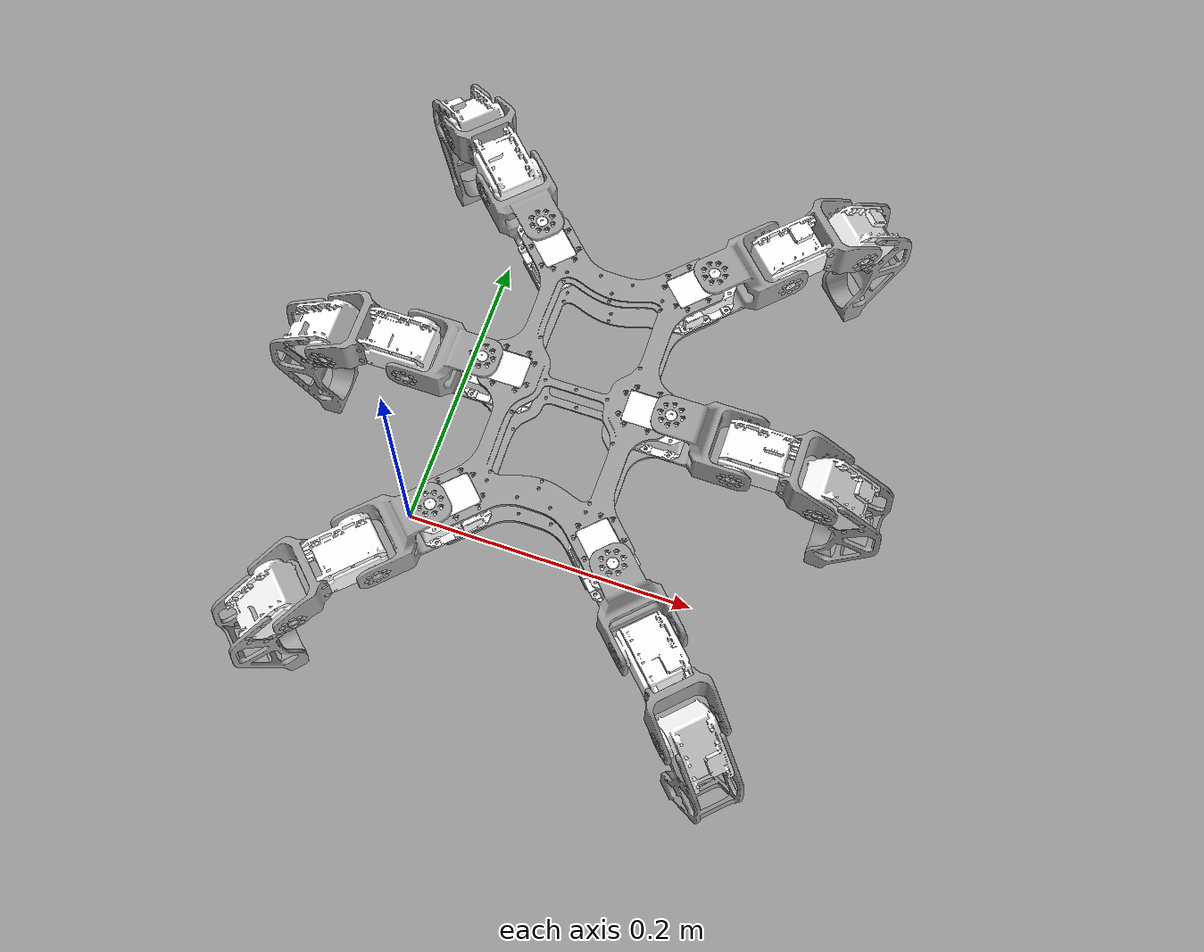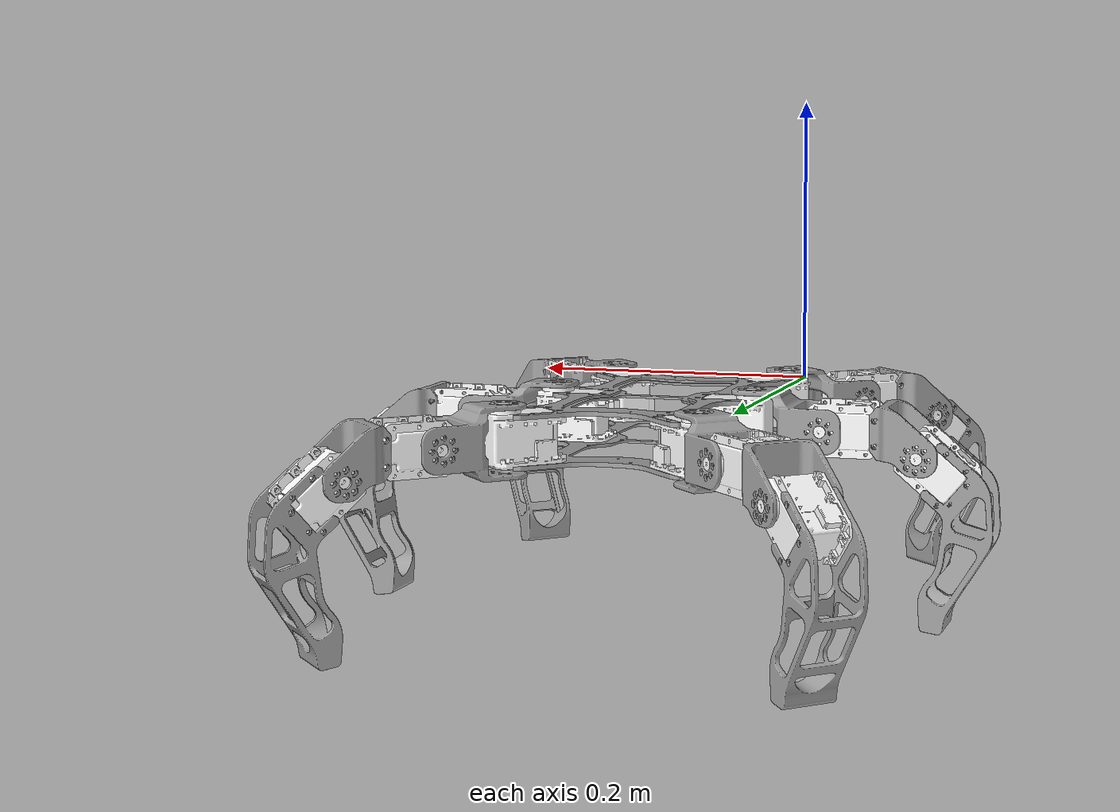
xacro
<?xml version="1.0"?>
<robot xmlns:xacro="http://www.ros.org/wiki/xacro" name="HexNav">

  <!-- Materials (shared across all assemblies) -->
  <material name="Steel">
    <color rgba="0.627 0.627 0.627 1.0"/>
  </material>
  <material name="custom_materials_MX_28">
    <color rgba="1.000 1.000 1.000 1.0"/>
  </material>

  <!-- Assembly includes -->
  <xacro:include filename="$(find HexNav_description)/urdf/assemblies/HexNav.urdf.xacro"/>

  <!-- Instantiate assemblies -->
  <xacro:HexNav prefix=""/>

</robot>

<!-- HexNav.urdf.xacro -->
<robot xmlns:xacro="http://www.ros.org/wiki/xacro" name="HexNav_macro">

  <xacro:macro name="HexNav" params="prefix">

  <link name="${prefix}base_link">
      <inertial>
        <origin xyz="0.076463 0.126463 -0.000093" rpy="0 0 0"/>
        <mass value="0.241313"/>
        <inertia ixx="1.257749e-03" ixy="-1.134942e-10" ixz="4.004551e-12"
                 iyy="3.921782e-04" iyz="6.945432e-12" izz="1.649569e-03"/>
      </inertial>
      <visual>
        <origin xyz="0.000000 0.000000 0.000000" rpy="0 0 0"/>
        <geometry>
          <mesh filename="package://HexNav_description/meshes/HexNav/base_link.dae" scale="1 1 1"/>
        </geometry>
        <material name="Steel"/>
      </visual>
      <collision>
        <origin xyz="0.000000 0.000000 0.000000" rpy="0 0 0"/>
        <geometry>
          <mesh filename="package://HexNav_description/meshes/HexNav/base_link_collision.stl" scale="0.01 0.01 0.01"/>
        </geometry>
      </collision>
    </link>

    <link name="${prefix}leg_1_mx28_coxa">
      <inertial>
        <origin xyz="-0.000000 -0.011211 0.000488" rpy="0 0 0"/>
        <mass value="0.073939"/>
        <inertia ixx="2.133718e-05" ixy="4.105011e-11" ixz="8.804791e-12"
                 iyy="1.325329e-05" iyz="-7.349997e-07" izz="1.755926e-05"/>
      </inertial>
      <visual>
        <origin xyz="0.000000 0.000000 0.000000" rpy="0 0 0"/>
        <geometry>
          <mesh filename="package://HexNav_description/meshes/HexNav/leg_1_mx28_coxa.dae" scale="1 1 1"/>
        </geometry>
        <material name="custom_materials_MX_28"/>
      </visual>
      <collision>
        <origin xyz="0.000000 0.000000 0.000000" rpy="0 0 0"/>
        <geometry>
          <mesh filename="package://HexNav_description/meshes/HexNav/leg_1_mx28_coxa_collision.stl" scale="0.01 0.01 0.01"/>
        </geometry>
      </collision>
    </link>

    <link name="${prefix}leg_2_mx28_coxa">
      <inertial>
        <origin xyz="-0.000000 -0.011211 0.000488" rpy="0 0 0"/>
        <mass value="0.073939"/>
        <inertia ixx="2.133718e-05" ixy="4.105011e-11" ixz="8.804791e-12"
                 iyy="1.325329e-05" iyz="-7.349997e-07" izz="1.755926e-05"/>
      </inertial>
      <visual>
        <origin xyz="0.000000 0.000000 0.000000" rpy="0 0 0"/>
        <geometry>
          <mesh filename="package://HexNav_description/meshes/HexNav/leg_2_mx28_coxa.dae" scale="1 1 1"/>
        </geometry>
        <material name="custom_materials_MX_28"/>
      </visual>
      <collision>
        <origin xyz="0.000000 0.000000 0.000000" rpy="0 0 0"/>
        <geometry>
          <mesh filename="package://HexNav_description/meshes/HexNav/leg_2_mx28_coxa_collision.stl" scale="0.01 0.01 0.01"/>
        </geometry>
      </collision>
    </link>

    <link name="${prefix}leg_3_mx28_coxa">
      <inertial>
        <origin xyz="-0.000000 -0.011211 0.000488" rpy="0 0 0"/>
        <mass value="0.073939"/>
        <inertia ixx="2.133718e-05" ixy="4.105011e-11" ixz="8.804791e-12"
                 iyy="1.325329e-05" iyz="-7.349997e-07" izz="1.755926e-05"/>
      </inertial>
      <visual>
        <origin xyz="0.000000 0.000000 0.000000" rpy="0 0 0"/>
        <geometry>
          <mesh filename="package://HexNav_description/meshes/HexNav/leg_3_mx28_coxa.dae" scale="1 1 1"/>
        </geometry>
        <material name="custom_materials_MX_28"/>
      </visual>
      <collision>
        <origin xyz="0.000000 0.000000 0.000000" rpy="0 0 0"/>
        <geometry>
          <mesh filename="package://HexNav_description/meshes/HexNav/leg_3_mx28_coxa_collision.stl" scale="0.01 0.01 0.01"/>
        </geometry>
      </collision>
    </link>

    <link name="${prefix}leg_4_mx28_coxa">
      <inertial>
        <origin xyz="-0.000000 -0.011211 0.000488" rpy="0 0 0"/>
        <mass value="0.073939"/>
        <inertia ixx="2.133718e-05" ixy="4.105011e-11" ixz="8.804791e-12"
                 iyy="1.325329e-05" iyz="-7.349997e-07" izz="1.755926e-05"/>
      </inertial>
      <visual>
        <origin xyz="0.000000 0.000000 0.000000" rpy="0 0 0"/>
        <geometry>
          <mesh filename="package://HexNav_description/meshes/HexNav/leg_4_mx28_coxa.dae" scale="1 1 1"/>
        </geometry>
        <material name="custom_materials_MX_28"/>
      </visual>
      <collision>
        <origin xyz="0.000000 0.000000 0.000000" rpy="0 0 0"/>
        <geometry>
          <mesh filename="package://HexNav_description/meshes/HexNav/leg_4_mx28_coxa_collision.stl" scale="0.01 0.01 0.01"/>
        </geometry>
      </collision>
    </link>

    <link name="${prefix}leg_5_mx28_coxa">
      <inertial>
        <origin xyz="-0.000000 -0.011211 0.000488" rpy="0 0 0"/>
        <mass value="0.073939"/>
        <inertia ixx="2.133718e-05" ixy="4.105011e-11" ixz="8.804791e-12"
                 iyy="1.325329e-05" iyz="-7.349997e-07" izz="1.755926e-05"/>
      </inertial>
      <visual>
        <origin xyz="0.000000 0.000000 0.000000" rpy="0 0 0"/>
        <geometry>
          <mesh filename="package://HexNav_description/meshes/HexNav/leg_5_mx28_coxa.dae" scale="1 1 1"/>
        </geometry>
        <material name="custom_materials_MX_28"/>
      </visual>
      <collision>
        <origin xyz="0.000000 0.000000 0.000000" rpy="0 0 0"/>
        <geometry>
          <mesh filename="package://HexNav_description/meshes/HexNav/leg_5_mx28_coxa_collision.stl" scale="0.01 0.01 0.01"/>
        </geometry>
      </collision>
    </link>

    <link name="${prefix}leg_6_mx28_coxa">
      <inertial>
        <origin xyz="-0.000000 -0.011211 0.000488" rpy="0 0 0"/>
        <mass value="0.073939"/>
        <inertia ixx="2.133718e-05" ixy="4.105011e-11" ixz="8.804791e-12"
                 iyy="1.325329e-05" iyz="-7.349997e-07" izz="1.755926e-05"/>
      </inertial>
      <visual>
        <origin xyz="0.000000 0.000000 0.000000" rpy="0 0 0"/>
        <geometry>
          <mesh filename="package://HexNav_description/meshes/HexNav/leg_6_mx28_coxa.dae" scale="1 1 1"/>
        </geometry>
        <material name="custom_materials_MX_28"/>
      </visual>
      <collision>
        <origin xyz="0.000000 0.000000 0.000000" rpy="0 0 0"/>
        <geometry>
          <mesh filename="package://HexNav_description/meshes/HexNav/leg_6_mx28_coxa_collision.stl" scale="0.01 0.01 0.01"/>
        </geometry>
      </collision>
    </link>

    <link name="${prefix}leg_1_coxa">
      <inertial>
        <origin xyz="0.025992 0.000000 -0.021000" rpy="0 0 0"/>
        <mass value="0.192963"/>
        <inertia ixx="8.738242e-05" ixy="2.125340e-10" ixz="2.256209e-11"
                 iyy="8.740078e-05" iyz="-1.147543e-12" izz="8.977308e-05"/>
      </inertial>
      <visual>
        <origin xyz="0.052000 -0.000000 -0.021000" rpy="0 0 0"/>
        <geometry>
          <mesh filename="package://HexNav_description/meshes/HexNav/leg_1_coxa.dae" scale="1 1 1"/>
        </geometry>
        <material name="Steel"/>
      </visual>
      <collision>
        <origin xyz="0.052000 -0.000000 -0.021000" rpy="0 0 0"/>
        <geometry>
          <mesh filename="package://HexNav_description/meshes/HexNav/leg_1_coxa_collision.stl" scale="0.01 0.01 0.01"/>
        </geometry>
      </collision>
    </link>

    <link name="${prefix}leg_2_coxa">
      <inertial>
        <origin xyz="0.025992 0.000000 -0.021000" rpy="0 0 0"/>
        <mass value="0.192963"/>
        <inertia ixx="8.738242e-05" ixy="2.125340e-10" ixz="2.256209e-11"
                 iyy="8.740078e-05" iyz="-1.147543e-12" izz="8.977308e-05"/>
      </inertial>
      <visual>
        <origin xyz="0.052000 -0.000000 -0.021000" rpy="0 0 0"/>
        <geometry>
          <mesh filename="package://HexNav_description/meshes/HexNav/leg_2_coxa.dae" scale="1 1 1"/>
        </geometry>
        <material name="Steel"/>
      </visual>
      <collision>
        <origin xyz="0.052000 -0.000000 -0.021000" rpy="0 0 0"/>
        <geometry>
          <mesh filename="package://HexNav_description/meshes/HexNav/leg_2_coxa_collision.stl" scale="0.01 0.01 0.01"/>
        </geometry>
      </collision>
    </link>

    <link name="${prefix}leg_3_coxa">
      <inertial>
        <origin xyz="0.025992 0.000000 -0.021000" rpy="0 0 0"/>
        <mass value="0.192963"/>
        <inertia ixx="8.738242e-05" ixy="2.125340e-10" ixz="2.256209e-11"
                 iyy="8.740078e-05" iyz="-1.147543e-12" izz="8.977308e-05"/>
      </inertial>
      <visual>
        <origin xyz="0.052000 -0.000000 -0.021000" rpy="0 0 0"/>
        <geometry>
          <mesh filename="package://HexNav_description/meshes/HexNav/leg_3_coxa.dae" scale="1 1 1"/>
        </geometry>
        <material name="Steel"/>
      </visual>
      <collision>
        <origin xyz="0.052000 -0.000000 -0.021000" rpy="0 0 0"/>
        <geometry>
          <mesh filename="package://HexNav_description/meshes/HexNav/leg_3_coxa_collision.stl" scale="0.01 0.01 0.01"/>
        </geometry>
      </collision>
    </link>

    <link name="${prefix}leg_4_coxa">
      <inertial>
        <origin xyz="0.025992 0.000000 -0.021000" rpy="0 0 0"/>
        <mass value="0.192963"/>
        <inertia ixx="8.738242e-05" ixy="2.125340e-10" ixz="2.256209e-11"
                 iyy="8.740078e-05" iyz="-1.147543e-12" izz="8.977308e-05"/>
      </inertial>
      <visual>
        <origin xyz="0.052000 -0.000000 -0.021000" rpy="0 0 0"/>
        <geometry>
          <mesh filename="package://HexNav_description/meshes/HexNav/leg_4_coxa.dae" scale="1 1 1"/>
        </geometry>
        <material name="Steel"/>
      </visual>
      <collision>
        <origin xyz="0.052000 -0.000000 -0.021000" rpy="0 0 0"/>
        <geometry>
          <mesh filename="package://HexNav_description/meshes/HexNav/leg_4_coxa_collision.stl" scale="0.01 0.01 0.01"/>
        </geometry>
      </collision>
    </link>

    <link name="${prefix}leg_5_coxa">
      <inertial>
        <origin xyz="0.025992 0.000000 -0.021000" rpy="0 0 0"/>
        <mass value="0.192963"/>
        <inertia ixx="8.738242e-05" ixy="2.125340e-10" ixz="2.256209e-11"
                 iyy="8.740078e-05" iyz="-1.147543e-12" izz="8.977308e-05"/>
      </inertial>
      <visual>
        <origin xyz="0.052000 -0.000000 -0.021000" rpy="0 0 0"/>
        <geometry>
          <mesh filename="package://HexNav_description/meshes/HexNav/leg_5_coxa.dae" scale="1 1 1"/>
        </geometry>
        <material name="Steel"/>
      </visual>
      <collision>
        <origin xyz="0.052000 -0.000000 -0.021000" rpy="0 0 0"/>
        <geometry>
          <mesh filename="package://HexNav_description/meshes/HexNav/leg_5_coxa_collision.stl" scale="0.01 0.01 0.01"/>
        </geometry>
      </collision>
    </link>

    <link name="${prefix}bot">
      <inertial>
        <origin xyz="0.076463 0.126463 0.001407" rpy="0 0 0"/>
        <mass value="0.241313"/>
        <inertia ixx="1.257749e-03" ixy="-1.134942e-10" ixz="4.004551e-12"
                 iyy="3.921782e-04" iyz="6.945432e-12" izz="1.649569e-03"/>
      </inertial>
      <visual>
        <origin xyz="0.000000 0.000000 0.000000" rpy="0 0 0"/>
        <geometry>
          <mesh filename="package://HexNav_description/meshes/HexNav/bot.dae" scale="1 1 1"/>
        </geometry>
        <material name="Steel"/>
      </visual>
      <collision>
        <origin xyz="0.000000 0.000000 0.000000" rpy="0 0 0"/>
        <geometry>
          <mesh filename="package://HexNav_description/meshes/HexNav/bot_collision.stl" scale="0.01 0.01 0.01"/>
        </geometry>
      </collision>
    </link>

    <link name="${prefix}leg_6_coxa">
      <inertial>
        <origin xyz="0.025992 0.000000 -0.021000" rpy="0 0 0"/>
        <mass value="0.192963"/>
        <inertia ixx="8.738242e-05" ixy="2.125340e-10" ixz="2.256209e-11"
                 iyy="8.740078e-05" iyz="-1.147543e-12" izz="8.977308e-05"/>
      </inertial>
      <visual>
        <origin xyz="0.052000 -0.000000 -0.021000" rpy="0 0 0"/>
        <geometry>
          <mesh filename="package://HexNav_description/meshes/HexNav/leg_6_coxa.dae" scale="1 1 1"/>
        </geometry>
        <material name="Steel"/>
      </visual>
      <collision>
        <origin xyz="0.052000 -0.000000 -0.021000" rpy="0 0 0"/>
        <geometry>
          <mesh filename="package://HexNav_description/meshes/HexNav/leg_6_coxa_collision.stl" scale="0.01 0.01 0.01"/>
        </geometry>
      </collision>
    </link>

    <link name="${prefix}leg_1_mx28_femur">
      <inertial>
        <origin xyz="-0.000000 -0.011211 -0.020512" rpy="0 0 0"/>
        <mass value="0.073939"/>
        <inertia ixx="2.133718e-05" ixy="4.105011e-11" ixz="8.804791e-12"
                 iyy="1.325329e-05" iyz="-7.349997e-07" izz="1.755926e-05"/>
      </inertial>
      <visual>
        <origin xyz="0.000000 -0.000000 -0.021000" rpy="0 0 0"/>
        <geometry>
          <mesh filename="package://HexNav_description/meshes/HexNav/leg_1_mx28_femur.dae" scale="1 1 1"/>
        </geometry>
        <material name="custom_materials_MX_28"/>
      </visual>
      <collision>
        <origin xyz="0.000000 -0.000000 -0.021000" rpy="0 0 0"/>
        <geometry>
          <mesh filename="package://HexNav_description/meshes/HexNav/leg_1_mx28_femur_collision.stl" scale="0.01 0.01 0.01"/>
        </geometry>
      </collision>
    </link>

    <link name="${prefix}leg_2_mx28_femur">
      <inertial>
        <origin xyz="-0.000000 -0.011211 -0.020512" rpy="0 0 0"/>
        <mass value="0.073939"/>
        <inertia ixx="2.133718e-05" ixy="4.105011e-11" ixz="8.804791e-12"
                 iyy="1.325329e-05" iyz="-7.349997e-07" izz="1.755926e-05"/>
      </inertial>
      <visual>
        <origin xyz="0.000000 0.000000 -0.021000" rpy="0 0 0"/>
        <geometry>
          <mesh filename="package://HexNav_description/meshes/HexNav/leg_2_mx28_femur.dae" scale="1 1 1"/>
        </geometry>
        <material name="custom_materials_MX_28"/>
      </visual>
      <collision>
        <origin xyz="0.000000 0.000000 -0.021000" rpy="0 0 0"/>
        <geometry>
          <mesh filename="package://HexNav_description/meshes/HexNav/leg_2_mx28_femur_collision.stl" scale="0.01 0.01 0.01"/>
        </geometry>
      </collision>
    </link>

    <link name="${prefix}leg_3_mx28_femur">
      <inertial>
        <origin xyz="-0.000000 -0.011211 -0.020512" rpy="0 0 0"/>
        <mass value="0.073939"/>
        <inertia ixx="2.133718e-05" ixy="4.105011e-11" ixz="8.804791e-12"
                 iyy="1.325329e-05" iyz="-7.349997e-07" izz="1.755926e-05"/>
      </inertial>
      <visual>
        <origin xyz="0.000000 0.000000 -0.021000" rpy="0 0 0"/>
        <geometry>
          <mesh filename="package://HexNav_description/meshes/HexNav/leg_3_mx28_femur.dae" scale="1 1 1"/>
        </geometry>
        <material name="custom_materials_MX_28"/>
      </visual>
      <collision>
        <origin xyz="0.000000 0.000000 -0.021000" rpy="0 0 0"/>
        <geometry>
          <mesh filename="package://HexNav_description/meshes/HexNav/leg_3_mx28_femur_collision.stl" scale="0.01 0.01 0.01"/>
        </geometry>
      </collision>
    </link>

    <link name="${prefix}leg_4_mx28_femur">
      <inertial>
        <origin xyz="-0.000000 -0.011211 -0.020512" rpy="0 0 0"/>
        <mass value="0.073939"/>
        <inertia ixx="2.133718e-05" ixy="4.105011e-11" ixz="8.804791e-12"
                 iyy="1.325329e-05" iyz="-7.349997e-07" izz="1.755926e-05"/>
      </inertial>
      <visual>
        <origin xyz="0.000000 0.000000 -0.021000" rpy="0 0 0"/>
        <geometry>
          <mesh filename="package://HexNav_description/meshes/HexNav/leg_4_mx28_femur.dae" scale="1 1 1"/>
        </geometry>
        <material name="custom_materials_MX_28"/>
      </visual>
      <collision>
        <origin xyz="0.000000 0.000000 -0.021000" rpy="0 0 0"/>
        <geometry>
          <mesh filename="package://HexNav_description/meshes/HexNav/leg_4_mx28_femur_collision.stl" scale="0.01 0.01 0.01"/>
        </geometry>
      </collision>
    </link>

    <link name="${prefix}leg_5_mx28_femur">
      <inertial>
        <origin xyz="-0.000000 -0.011211 -0.020512" rpy="0 0 0"/>
        <mass value="0.073939"/>
        <inertia ixx="2.133718e-05" ixy="4.105011e-11" ixz="8.804791e-12"
                 iyy="1.325329e-05" iyz="-7.349997e-07" izz="1.755926e-05"/>
      </inertial>
      <visual>
        <origin xyz="0.000000 0.000000 -0.021000" rpy="0 0 0"/>
        <geometry>
          <mesh filename="package://HexNav_description/meshes/HexNav/leg_5_mx28_femur.dae" scale="1 1 1"/>
        </geometry>
        <material name="custom_materials_MX_28"/>
      </visual>
      <collision>
        <origin xyz="0.000000 0.000000 -0.021000" rpy="0 0 0"/>
        <geometry>
          <mesh filename="package://HexNav_description/meshes/HexNav/leg_5_mx28_femur_collision.stl" scale="0.01 0.01 0.01"/>
        </geometry>
      </collision>
    </link>

    <link name="${prefix}leg_6_mx28_femur">
      <inertial>
        <origin xyz="-0.000000 -0.011211 -0.020512" rpy="0 0 0"/>
        <mass value="0.073939"/>
        <inertia ixx="2.133718e-05" ixy="4.105011e-11" ixz="8.804791e-12"
                 iyy="1.325329e-05" iyz="-7.349997e-07" izz="1.755926e-05"/>
      </inertial>
      <visual>
        <origin xyz="0.000000 0.000000 -0.021000" rpy="0 0 0"/>
        <geometry>
          <mesh filename="package://HexNav_description/meshes/HexNav/leg_6_mx28_femur.dae" scale="1 1 1"/>
        </geometry>
        <material name="custom_materials_MX_28"/>
      </visual>
      <collision>
        <origin xyz="0.000000 0.000000 -0.021000" rpy="0 0 0"/>
        <geometry>
          <mesh filename="package://HexNav_description/meshes/HexNav/leg_6_mx28_femur_collision.stl" scale="0.01 0.01 0.01"/>
        </geometry>
      </collision>
    </link>

    <link name="${prefix}leg_1_femur">
      <inertial>
        <origin xyz="0.002213 0.011329 -0.000000" rpy="0 0 0"/>
        <mass value="0.127034"/>
        <inertia ixx="4.921432e-05" ixy="-5.067981e-06" ixz="4.932326e-14"
                 iyy="5.134553e-05" iyz="-1.886637e-12" izz="2.756122e-05"/>
      </inertial>
      <visual>
        <origin xyz="0.000000 0.000000 0.000000" rpy="0 0 0"/>
        <geometry>
          <mesh filename="package://HexNav_description/meshes/HexNav/leg_1_femur.dae" scale="1 1 1"/>
        </geometry>
        <material name="Steel"/>
      </visual>
      <collision>
        <origin xyz="0.000000 0.000000 0.000000" rpy="0 0 0"/>
        <geometry>
          <mesh filename="package://HexNav_description/meshes/HexNav/leg_1_femur_collision.stl" scale="0.01 0.01 0.01"/>
        </geometry>
      </collision>
    </link>

    <link name="${prefix}leg_2_femur">
      <inertial>
        <origin xyz="0.002213 0.011329 -0.000000" rpy="0 0 0"/>
        <mass value="0.127034"/>
        <inertia ixx="4.921432e-05" ixy="-5.067981e-06" ixz="4.932326e-14"
                 iyy="5.134553e-05" iyz="-1.886637e-12" izz="2.756122e-05"/>
      </inertial>
      <visual>
        <origin xyz="0.000000 0.000000 0.000000" rpy="0 0 0"/>
        <geometry>
          <mesh filename="package://HexNav_description/meshes/HexNav/leg_2_femur.dae" scale="1 1 1"/>
        </geometry>
        <material name="Steel"/>
      </visual>
      <collision>
        <origin xyz="0.000000 0.000000 0.000000" rpy="0 0 0"/>
        <geometry>
          <mesh filename="package://HexNav_description/meshes/HexNav/leg_2_femur_collision.stl" scale="0.01 0.01 0.01"/>
        </geometry>
      </collision>
    </link>

    <link name="${prefix}leg_3_femur">
      <inertial>
        <origin xyz="0.002213 0.011329 -0.000000" rpy="0 0 0"/>
        <mass value="0.127034"/>
        <inertia ixx="4.921432e-05" ixy="-5.067981e-06" ixz="4.932326e-14"
                 iyy="5.134553e-05" iyz="-1.886637e-12" izz="2.756122e-05"/>
      </inertial>
      <visual>
        <origin xyz="0.000000 0.000000 0.000000" rpy="0 0 0"/>
        <geometry>
          <mesh filename="package://HexNav_description/meshes/HexNav/leg_3_femur.dae" scale="1 1 1"/>
        </geometry>
        <material name="Steel"/>
      </visual>
      <collision>
        <origin xyz="0.000000 0.000000 0.000000" rpy="0 0 0"/>
        <geometry>
          <mesh filename="package://HexNav_description/meshes/HexNav/leg_3_femur_collision.stl" scale="0.01 0.01 0.01"/>
        </geometry>
      </collision>
    </link>

    <link name="${prefix}leg_4_femur">
      <inertial>
        <origin xyz="0.002213 0.011329 -0.000000" rpy="0 0 0"/>
        <mass value="0.127034"/>
        <inertia ixx="4.921432e-05" ixy="-5.067981e-06" ixz="4.932326e-14"
                 iyy="5.134553e-05" iyz="-1.886637e-12" izz="2.756122e-05"/>
      </inertial>
      <visual>
        <origin xyz="0.000000 0.000000 0.000000" rpy="0 0 0"/>
        <geometry>
          <mesh filename="package://HexNav_description/meshes/HexNav/leg_4_femur.dae" scale="1 1 1"/>
        </geometry>
        <material name="Steel"/>
      </visual>
      <collision>
        <origin xyz="0.000000 0.000000 0.000000" rpy="0 0 0"/>
        <geometry>
          <mesh filename="package://HexNav_description/meshes/HexNav/leg_4_femur_collision.stl" scale="0.01 0.01 0.01"/>
        </geometry>
      </collision>
    </link>

    <link name="${prefix}leg_5_femur">
      <inertial>
        <origin xyz="0.002213 0.011329 -0.000000" rpy="0 0 0"/>
        <mass value="0.127034"/>
        <inertia ixx="4.921432e-05" ixy="-5.067981e-06" ixz="4.932326e-14"
                 iyy="5.134553e-05" iyz="-1.886637e-12" izz="2.756122e-05"/>
      </inertial>
      <visual>
        <origin xyz="0.000000 0.000000 0.000000" rpy="0 0 0"/>
        <geometry>
          <mesh filename="package://HexNav_description/meshes/HexNav/leg_5_femur.dae" scale="1 1 1"/>
        </geometry>
        <material name="Steel"/>
      </visual>
      <collision>
        <origin xyz="0.000000 0.000000 0.000000" rpy="0 0 0"/>
        <geometry>
          <mesh filename="package://HexNav_description/meshes/HexNav/leg_5_femur_collision.stl" scale="0.01 0.01 0.01"/>
        </geometry>
      </collision>
    </link>

    <link name="${prefix}leg_6_femur">
      <inertial>
        <origin xyz="0.002213 0.011329 -0.000000" rpy="0 0 0"/>
        <mass value="0.127034"/>
        <inertia ixx="4.921432e-05" ixy="-5.067981e-06" ixz="4.932326e-14"
                 iyy="5.134553e-05" iyz="-1.886637e-12" izz="2.756122e-05"/>
      </inertial>
      <visual>
        <origin xyz="0.000000 0.000000 0.000000" rpy="0 0 0"/>
        <geometry>
          <mesh filename="package://HexNav_description/meshes/HexNav/leg_6_femur.dae" scale="1 1 1"/>
        </geometry>
        <material name="Steel"/>
      </visual>
      <collision>
        <origin xyz="0.000000 0.000000 0.000000" rpy="0 0 0"/>
        <geometry>
          <mesh filename="package://HexNav_description/meshes/HexNav/leg_6_femur_collision.stl" scale="0.01 0.01 0.01"/>
        </geometry>
      </collision>
    </link>

    <link name="${prefix}leg_1_mx28_tibia">
      <inertial>
        <origin xyz="-0.000000 -0.011211 -0.020512" rpy="0 0 0"/>
        <mass value="0.073939"/>
        <inertia ixx="2.133718e-05" ixy="4.105011e-11" ixz="8.804791e-12"
                 iyy="1.325329e-05" iyz="-7.349997e-07" izz="1.755926e-05"/>
      </inertial>
      <visual>
        <origin xyz="-0.000000 0.000000 -0.021000" rpy="0 0 0"/>
        <geometry>
          <mesh filename="package://HexNav_description/meshes/HexNav/leg_1_mx28_tibia.dae" scale="1 1 1"/>
        </geometry>
        <material name="custom_materials_MX_28"/>
      </visual>
      <collision>
        <origin xyz="-0.000000 0.000000 -0.021000" rpy="0 0 0"/>
        <geometry>
          <mesh filename="package://HexNav_description/meshes/HexNav/leg_1_mx28_tibia_collision.stl" scale="0.01 0.01 0.01"/>
        </geometry>
      </collision>
    </link>

    <link name="${prefix}leg_2_mx28_tibia">
      <inertial>
        <origin xyz="-0.000000 -0.011211 -0.020512" rpy="0 0 0"/>
        <mass value="0.073939"/>
        <inertia ixx="2.133718e-05" ixy="4.105011e-11" ixz="8.804791e-12"
                 iyy="1.325329e-05" iyz="-7.349997e-07" izz="1.755926e-05"/>
      </inertial>
      <visual>
        <origin xyz="0.000000 0.000000 -0.021000" rpy="0 0 0"/>
        <geometry>
          <mesh filename="package://HexNav_description/meshes/HexNav/leg_2_mx28_tibia.dae" scale="1 1 1"/>
        </geometry>
        <material name="custom_materials_MX_28"/>
      </visual>
      <collision>
        <origin xyz="0.000000 0.000000 -0.021000" rpy="0 0 0"/>
        <geometry>
          <mesh filename="package://HexNav_description/meshes/HexNav/leg_2_mx28_tibia_collision.stl" scale="0.01 0.01 0.01"/>
        </geometry>
      </collision>
    </link>

    <link name="${prefix}leg_3_mx28_tibia">
      <inertial>
        <origin xyz="-0.000000 -0.011211 -0.020512" rpy="0 0 0"/>
        <mass value="0.073939"/>
        <inertia ixx="2.133718e-05" ixy="4.105011e-11" ixz="8.804791e-12"
                 iyy="1.325329e-05" iyz="-7.349997e-07" izz="1.755926e-05"/>
      </inertial>
      <visual>
        <origin xyz="0.000000 0.000000 -0.021000" rpy="0 0 0"/>
        <geometry>
          <mesh filename="package://HexNav_description/meshes/HexNav/leg_3_mx28_tibia.dae" scale="1 1 1"/>
        </geometry>
        <material name="custom_materials_MX_28"/>
      </visual>
      <collision>
        <origin xyz="0.000000 0.000000 -0.021000" rpy="0 0 0"/>
        <geometry>
          <mesh filename="package://HexNav_description/meshes/HexNav/leg_3_mx28_tibia_collision.stl" scale="0.01 0.01 0.01"/>
        </geometry>
      </collision>
    </link>

    <link name="${prefix}leg_4_mx28_tibia">
      <inertial>
        <origin xyz="-0.000000 -0.011211 -0.020512" rpy="0 0 0"/>
        <mass value="0.073939"/>
        <inertia ixx="2.133718e-05" ixy="4.105011e-11" ixz="8.804791e-12"
                 iyy="1.325329e-05" iyz="-7.349997e-07" izz="1.755926e-05"/>
      </inertial>
      <visual>
        <origin xyz="0.000000 0.000000 -0.021000" rpy="0 0 0"/>
        <geometry>
          <mesh filename="package://HexNav_description/meshes/HexNav/leg_4_mx28_tibia.dae" scale="1 1 1"/>
        </geometry>
        <material name="custom_materials_MX_28"/>
      </visual>
      <collision>
        <origin xyz="0.000000 0.000000 -0.021000" rpy="0 0 0"/>
        <geometry>
          <mesh filename="package://HexNav_description/meshes/HexNav/leg_4_mx28_tibia_collision.stl" scale="0.01 0.01 0.01"/>
        </geometry>
      </collision>
    </link>

    <link name="${prefix}leg_5_mx28_tibia">
      <inertial>
        <origin xyz="-0.000000 -0.011211 -0.020512" rpy="0 0 0"/>
        <mass value="0.073939"/>
        <inertia ixx="2.133718e-05" ixy="4.105011e-11" ixz="8.804791e-12"
                 iyy="1.325329e-05" iyz="-7.349997e-07" izz="1.755926e-05"/>
      </inertial>
      <visual>
        <origin xyz="0.000000 0.000000 -0.021000" rpy="0 0 0"/>
        <geometry>
          <mesh filename="package://HexNav_description/meshes/HexNav/leg_5_mx28_tibia.dae" scale="1 1 1"/>
        </geometry>
        <material name="custom_materials_MX_28"/>
      </visual>
      <collision>
        <origin xyz="0.000000 0.000000 -0.021000" rpy="0 0 0"/>
        <geometry>
          <mesh filename="package://HexNav_description/meshes/HexNav/leg_5_mx28_tibia_collision.stl" scale="0.01 0.01 0.01"/>
        </geometry>
      </collision>
    </link>

    <link name="${prefix}leg_6_mx28_tibia">
      <inertial>
        <origin xyz="-0.000000 -0.011211 -0.020512" rpy="0 0 0"/>
        <mass value="0.073939"/>
        <inertia ixx="2.133718e-05" ixy="4.105011e-11" ixz="8.804791e-12"
                 iyy="1.325329e-05" iyz="-7.349997e-07" izz="1.755926e-05"/>
      </inertial>
      <visual>
        <origin xyz="0.000000 0.000000 -0.021000" rpy="0 0 0"/>
        <geometry>
          <mesh filename="package://HexNav_description/meshes/HexNav/leg_6_mx28_tibia.dae" scale="1 1 1"/>
        </geometry>
        <material name="custom_materials_MX_28"/>
      </visual>
      <collision>
        <origin xyz="0.000000 0.000000 -0.021000" rpy="0 0 0"/>
        <geometry>
          <mesh filename="package://HexNav_description/meshes/HexNav/leg_6_mx28_tibia_collision.stl" scale="0.01 0.01 0.01"/>
        </geometry>
      </collision>
    </link>

    <link name="${prefix}leg_1_tibia">
      <inertial>
        <origin xyz="-0.049791 -0.043459 0.000001" rpy="0 0 0"/>
        <mass value="0.154960"/>
        <inertia ixx="2.043246e-04" ixy="-7.967356e-05" ixz="-5.657857e-09"
                 iyy="8.623365e-05" iyz="-8.197066e-09" izz="2.302703e-04"/>
      </inertial>
      <visual>
        <origin xyz="0.000000 0.000000 0.000000" rpy="0 0 0"/>
        <geometry>
          <mesh filename="package://HexNav_description/meshes/HexNav/leg_1_tibia.dae" scale="1 1 1"/>
        </geometry>
        <material name="Steel"/>
      </visual>
      <collision>
        <origin xyz="0.000000 0.000000 0.000000" rpy="0 0 0"/>
        <geometry>
          <mesh filename="package://HexNav_description/meshes/HexNav/leg_1_tibia_collision.stl" scale="0.01 0.01 0.01"/>
        </geometry>
      </collision>
    </link>

    <link name="${prefix}leg_2_tibia">
      <inertial>
        <origin xyz="-0.049791 -0.043459 0.000001" rpy="0 0 0"/>
        <mass value="0.154960"/>
        <inertia ixx="2.043246e-04" ixy="-7.967356e-05" ixz="-5.657857e-09"
                 iyy="8.623365e-05" iyz="-8.197066e-09" izz="2.302703e-04"/>
      </inertial>
      <visual>
        <origin xyz="0.000000 0.000000 0.000000" rpy="0 0 0"/>
        <geometry>
          <mesh filename="package://HexNav_description/meshes/HexNav/leg_2_tibia.dae" scale="1 1 1"/>
        </geometry>
        <material name="Steel"/>
      </visual>
      <collision>
        <origin xyz="0.000000 0.000000 0.000000" rpy="0 0 0"/>
        <geometry>
          <mesh filename="package://HexNav_description/meshes/HexNav/leg_2_tibia_collision.stl" scale="0.01 0.01 0.01"/>
        </geometry>
      </collision>
    </link>

    <link name="${prefix}leg_3_tibia">
      <inertial>
        <origin xyz="-0.049791 -0.043459 0.000001" rpy="0 0 0"/>
        <mass value="0.154960"/>
        <inertia ixx="2.043246e-04" ixy="-7.967356e-05" ixz="-5.657857e-09"
                 iyy="8.623365e-05" iyz="-8.197066e-09" izz="2.302703e-04"/>
      </inertial>
      <visual>
        <origin xyz="0.000000 0.000000 0.000000" rpy="0 0 0"/>
        <geometry>
          <mesh filename="package://HexNav_description/meshes/HexNav/leg_3_tibia.dae" scale="1 1 1"/>
        </geometry>
        <material name="Steel"/>
      </visual>
      <collision>
        <origin xyz="0.000000 0.000000 0.000000" rpy="0 0 0"/>
        <geometry>
          <mesh filename="package://HexNav_description/meshes/HexNav/leg_3_tibia_collision.stl" scale="0.01 0.01 0.01"/>
        </geometry>
      </collision>
    </link>

    <link name="${prefix}leg_4_tibia">
      <inertial>
        <origin xyz="-0.049791 -0.043459 0.000001" rpy="0 0 0"/>
        <mass value="0.154960"/>
        <inertia ixx="2.043246e-04" ixy="-7.967356e-05" ixz="-5.657857e-09"
                 iyy="8.623365e-05" iyz="-8.197066e-09" izz="2.302703e-04"/>
      </inertial>
      <visual>
        <origin xyz="0.000000 0.000000 0.000000" rpy="0 0 0"/>
        <geometry>
          <mesh filename="package://HexNav_description/meshes/HexNav/leg_4_tibia.dae" scale="1 1 1"/>
        </geometry>
        <material name="Steel"/>
      </visual>
      <collision>
        <origin xyz="0.000000 0.000000 0.000000" rpy="0 0 0"/>
        <geometry>
          <mesh filename="package://HexNav_description/meshes/HexNav/leg_4_tibia_collision.stl" scale="0.01 0.01 0.01"/>
        </geometry>
      </collision>
    </link>

    <link name="${prefix}leg_5_tibia">
      <inertial>
        <origin xyz="-0.049791 -0.043459 0.000001" rpy="0 0 0"/>
        <mass value="0.154960"/>
        <inertia ixx="2.043246e-04" ixy="-7.967356e-05" ixz="-5.657857e-09"
                 iyy="8.623365e-05" iyz="-8.197066e-09" izz="2.302703e-04"/>
      </inertial>
      <visual>
        <origin xyz="0.000000 0.000000 0.000000" rpy="0 0 0"/>
        <geometry>
          <mesh filename="package://HexNav_description/meshes/HexNav/leg_5_tibia.dae" scale="1 1 1"/>
        </geometry>
        <material name="Steel"/>
      </visual>
      <collision>
        <origin xyz="0.000000 0.000000 0.000000" rpy="0 0 0"/>
        <geometry>
          <mesh filename="package://HexNav_description/meshes/HexNav/leg_5_tibia_collision.stl" scale="0.01 0.01 0.01"/>
        </geometry>
      </collision>
    </link>

    <link name="${prefix}leg_6_tibia">
      <inertial>
        <origin xyz="-0.049791 -0.043459 0.000001" rpy="0 0 0"/>
        <mass value="0.154960"/>
        <inertia ixx="2.043246e-04" ixy="-7.967356e-05" ixz="-5.657857e-09"
                 iyy="8.623365e-05" iyz="-8.197066e-09" izz="2.302703e-04"/>
      </inertial>
      <visual>
        <origin xyz="0.000000 0.000000 0.000000" rpy="0 0 0"/>
        <geometry>
          <mesh filename="package://HexNav_description/meshes/HexNav/leg_6_tibia.dae" scale="1 1 1"/>
        </geometry>
        <material name="Steel"/>
      </visual>
      <collision>
        <origin xyz="0.000000 0.000000 0.000000" rpy="0 0 0"/>
        <geometry>
          <mesh filename="package://HexNav_description/meshes/HexNav/leg_6_tibia_collision.stl" scale="0.01 0.01 0.01"/>
        </geometry>
      </collision>
    </link>

    <joint name="${prefix}leg_1_coxa_mount" type="fixed">
      <parent link="${prefix}base_link"/>
      <child link="${prefix}leg_1_mx28_coxa"/>
      <origin xyz="0.010886 0.010886 -0.016500" rpy="-0.000000 0.000000 2.356194"/>
    </joint>

    <joint name="${prefix}leg_2_coxa_mount" type="fixed">
      <parent link="${prefix}base_link"/>
      <child link="${prefix}leg_2_mx28_coxa"/>
      <origin xyz="0.142040 0.010886 -0.016500" rpy="-0.000000 0.000000 -2.356194"/>
    </joint>

    <joint name="${prefix}leg_3_coxa_mount" type="fixed">
      <parent link="${prefix}base_link"/>
      <child link="${prefix}leg_3_mx28_coxa"/>
      <origin xyz="0.146243 0.126463 -0.016500" rpy="-0.000000 0.000000 -1.570796"/>
    </joint>

    <joint name="${prefix}leg_4_coxa_mount" type="fixed">
      <parent link="${prefix}base_link"/>
      <child link="${prefix}leg_4_mx28_coxa"/>
      <origin xyz="0.142040 0.242040 -0.016500" rpy="-0.000000 0.000000 -0.785398"/>
    </joint>

    <joint name="${prefix}leg_5_coxa_mount" type="fixed">
      <parent link="${prefix}base_link"/>
      <child link="${prefix}leg_5_mx28_coxa"/>
      <origin xyz="0.010886 0.242040 -0.016500" rpy="-0.000000 0.000000 0.785398"/>
    </joint>

    <joint name="${prefix}leg_6_coxa_mount" type="fixed">
      <parent link="${prefix}base_link"/>
      <child link="${prefix}leg_6_mx28_coxa"/>
      <origin xyz="0.006683 0.126463 -0.016500" rpy="-0.000000 0.000000 1.570796"/>
    </joint>

    <joint name="${prefix}leg_1_coxa_joint" type="continuous">
      <parent link="${prefix}leg_1_mx28_coxa"/>
      <child link="${prefix}leg_1_coxa"/>
      <origin xyz="0.000000 -0.000000 0.021000" rpy="-0.000000 -0.000000 1.570796"/>
      <axis xyz="0.000000 -0.000000 1.000000"/>
      <limit effort="100.0" velocity="1.00"/>
    </joint>

    <joint name="${prefix}leg_2_coxa_joint" type="continuous">
      <parent link="${prefix}leg_2_mx28_coxa"/>
      <child link="${prefix}leg_2_coxa"/>
      <origin xyz="-0.000000 0.000000 0.021000" rpy="0.000000 0.000000 1.570796"/>
      <axis xyz="-0.000000 0.000000 1.000000"/>
      <limit effort="100.0" velocity="1.00"/>
    </joint>

    <joint name="${prefix}leg_3_coxa_joint" type="continuous">
      <parent link="${prefix}leg_3_mx28_coxa"/>
      <child link="${prefix}leg_3_coxa"/>
      <origin xyz="-0.000000 -0.000000 0.021000" rpy="0.000000 0.000000 1.570796"/>
      <axis xyz="-0.000000 0.000000 1.000000"/>
      <limit effort="100.0" velocity="1.00"/>
    </joint>

    <joint name="${prefix}leg_4_coxa_joint" type="continuous">
      <parent link="${prefix}leg_4_mx28_coxa"/>
      <child link="${prefix}leg_4_coxa"/>
      <origin xyz="-0.000000 -0.000000 0.021000" rpy="0.000000 0.000000 1.570796"/>
      <axis xyz="-0.000000 0.000000 1.000000"/>
      <limit effort="100.0" velocity="1.00"/>
    </joint>

    <joint name="${prefix}leg_5_coxa_joint" type="continuous">
      <parent link="${prefix}leg_5_mx28_coxa"/>
      <child link="${prefix}leg_5_coxa"/>
      <origin xyz="-0.000000 -0.000000 0.021000" rpy="0.000000 0.000000 1.570796"/>
      <axis xyz="-0.000000 0.000000 1.000000"/>
      <limit effort="100.0" velocity="1.00"/>
    </joint>

    <joint name="${prefix}bot_mount" type="fixed">
      <parent link="${prefix}leg_5_mx28_coxa"/>
      <child link="${prefix}bot"/>
      <origin xyz="-0.070711 -0.271586 -0.015000" rpy="3.141593 -0.000000 2.356194"/>
    </joint>

    <joint name="${prefix}leg_6_coxa_joint" type="continuous">
      <parent link="${prefix}leg_6_mx28_coxa"/>
      <child link="${prefix}leg_6_coxa"/>
      <origin xyz="-0.000000 -0.000000 0.021000" rpy="0.000000 0.000000 1.570796"/>
      <axis xyz="-0.000000 0.000000 1.000000"/>
      <limit effort="100.0" velocity="1.00"/>
    </joint>

    <joint name="${prefix}leg_1_femur_joint" type="continuous">
      <parent link="${prefix}leg_1_coxa"/>
      <child link="${prefix}leg_1_mx28_femur"/>
      <origin xyz="0.052000 -0.021000 -0.021000" rpy="1.570796 -1.570796 0.000000"/>
      <axis xyz="-0.000000 -0.000000 1.000000"/>
      <limit effort="100.0" velocity="1.00"/>
    </joint>

    <joint name="${prefix}leg_2_femur_joint" type="continuous">
      <parent link="${prefix}leg_2_coxa"/>
      <child link="${prefix}leg_2_mx28_femur"/>
      <origin xyz="0.052000 -0.021000 -0.021000" rpy="1.570796 -1.570796 0.000000"/>
      <axis xyz="-0.000000 0.000000 1.000000"/>
      <limit effort="100.0" velocity="1.00"/>
    </joint>

    <joint name="${prefix}leg_3_femur_joint" type="continuous">
      <parent link="${prefix}leg_3_coxa"/>
      <child link="${prefix}leg_3_mx28_femur"/>
      <origin xyz="0.052000 -0.021000 -0.021000" rpy="1.570796 -1.570796 0.000000"/>
      <axis xyz="-0.000000 0.000000 1.000000"/>
      <limit effort="100.0" velocity="1.00"/>
    </joint>

    <joint name="${prefix}leg_4_femur_joint" type="continuous">
      <parent link="${prefix}leg_4_coxa"/>
      <child link="${prefix}leg_4_mx28_femur"/>
      <origin xyz="0.052000 -0.021000 -0.021000" rpy="1.570796 -1.570796 0.000000"/>
      <axis xyz="-0.000000 -0.000000 1.000000"/>
      <limit effort="100.0" velocity="1.00"/>
    </joint>

    <joint name="${prefix}leg_5_femur_joint" type="continuous">
      <parent link="${prefix}leg_5_coxa"/>
      <child link="${prefix}leg_5_mx28_femur"/>
      <origin xyz="0.052000 -0.021000 -0.021000" rpy="1.570796 -1.570796 0.000000"/>
      <axis xyz="-0.000000 0.000000 1.000000"/>
      <limit effort="100.0" velocity="1.00"/>
    </joint>

    <joint name="${prefix}leg_6_femur_joint" type="continuous">
      <parent link="${prefix}leg_6_coxa"/>
      <child link="${prefix}leg_6_mx28_femur"/>
      <origin xyz="0.052000 -0.021000 -0.021000" rpy="1.570796 -1.570796 0.000000"/>
      <axis xyz="-0.000000 -0.000000 1.000000"/>
      <limit effort="100.0" velocity="1.00"/>
    </joint>

    <joint name="${prefix}leg_1_femur_mount" type="fixed">
      <parent link="${prefix}leg_1_mx28_femur"/>
      <child link="${prefix}leg_1_femur"/>
      <origin xyz="-0.000000 -0.035800 -0.021000" rpy="-0.000000 -0.000000 -3.141593"/>
    </joint>

    <joint name="${prefix}leg_2_femur_mount" type="fixed">
      <parent link="${prefix}leg_2_mx28_femur"/>
      <child link="${prefix}leg_2_femur"/>
      <origin xyz="-0.000000 -0.035800 -0.021000" rpy="-0.000000 -0.000000 -3.141593"/>
    </joint>

    <joint name="${prefix}leg_3_femur_mount" type="fixed">
      <parent link="${prefix}leg_3_mx28_femur"/>
      <child link="${prefix}leg_3_femur"/>
      <origin xyz="-0.000000 -0.035800 -0.021000" rpy="-0.000000 -0.000000 -3.141593"/>
    </joint>

    <joint name="${prefix}leg_4_femur_mount" type="fixed">
      <parent link="${prefix}leg_4_mx28_femur"/>
      <child link="${prefix}leg_4_femur"/>
      <origin xyz="-0.000000 -0.035800 -0.021000" rpy="-0.000000 -0.000000 -3.141593"/>
    </joint>

    <joint name="${prefix}leg_5_femur_mount" type="fixed">
      <parent link="${prefix}leg_5_mx28_femur"/>
      <child link="${prefix}leg_5_femur"/>
      <origin xyz="-0.000000 -0.035800 -0.021000" rpy="-0.000000 -0.000000 -3.141593"/>
    </joint>

    <joint name="${prefix}leg_6_femur_mount" type="fixed">
      <parent link="${prefix}leg_6_mx28_femur"/>
      <child link="${prefix}leg_6_femur"/>
      <origin xyz="-0.000000 -0.035800 -0.021000" rpy="-0.000000 -0.000000 -3.141593"/>
    </joint>

    <joint name="${prefix}leg_1_tibia_joint" type="continuous">
      <parent link="${prefix}leg_1_femur"/>
      <child link="${prefix}leg_1_mx28_tibia"/>
      <origin xyz="0.015000 0.029000 0.021000" rpy="-0.000000 0.000000 2.443461"/>
      <axis xyz="-0.000000 -0.000000 1.000000"/>
      <limit effort="100.0" velocity="1.00"/>
    </joint>

    <joint name="${prefix}leg_2_tibia_joint" type="continuous">
      <parent link="${prefix}leg_2_femur"/>
      <child link="${prefix}leg_2_mx28_tibia"/>
      <origin xyz="0.015000 0.029000 0.021000" rpy="-0.000000 0.000000 2.443461"/>
      <axis xyz="-0.000000 -0.000000 1.000000"/>
      <limit effort="100.0" velocity="1.00"/>
    </joint>

    <joint name="${prefix}leg_3_tibia_joint" type="continuous">
      <parent link="${prefix}leg_3_femur"/>
      <child link="${prefix}leg_3_mx28_tibia"/>
      <origin xyz="0.015000 0.029000 0.021000" rpy="-0.000000 0.000000 2.443461"/>
      <axis xyz="-0.000000 -0.000000 1.000000"/>
      <limit effort="100.0" velocity="1.00"/>
    </joint>

    <joint name="${prefix}leg_4_tibia_joint" type="continuous">
      <parent link="${prefix}leg_4_femur"/>
      <child link="${prefix}leg_4_mx28_tibia"/>
      <origin xyz="0.015000 0.029000 0.021000" rpy="-0.000000 0.000000 2.443461"/>
      <axis xyz="-0.000000 -0.000000 1.000000"/>
      <limit effort="100.0" velocity="1.00"/>
    </joint>

    <joint name="${prefix}leg_5_tibia_joint" type="continuous">
      <parent link="${prefix}leg_5_femur"/>
      <child link="${prefix}leg_5_mx28_tibia"/>
      <origin xyz="0.015000 0.029000 0.021000" rpy="-0.000000 0.000000 2.443461"/>
      <axis xyz="-0.000000 -0.000000 1.000000"/>
      <limit effort="100.0" velocity="1.00"/>
    </joint>

    <joint name="${prefix}leg_6_tibia_joint" type="continuous">
      <parent link="${prefix}leg_6_femur"/>
      <child link="${prefix}leg_6_mx28_tibia"/>
      <origin xyz="0.015000 0.029000 0.021000" rpy="-0.000000 0.000000 2.443461"/>
      <axis xyz="-0.000000 -0.000000 1.000000"/>
      <limit effort="100.0" velocity="1.00"/>
    </joint>

    <joint name="${prefix}leg_1_tibia_mount" type="fixed">
      <parent link="${prefix}leg_1_mx28_tibia"/>
      <child link="${prefix}leg_1_tibia"/>
      <origin xyz="-0.000000 -0.013300 -0.021000" rpy="3.141593 0.000000 1.570796"/>
    </joint>

    <joint name="${prefix}leg_2_tibia_mount" type="fixed">
      <parent link="${prefix}leg_2_mx28_tibia"/>
      <child link="${prefix}leg_2_tibia"/>
      <origin xyz="0.000000 -0.013300 -0.021000" rpy="-3.141593 0.000000 1.570796"/>
    </joint>

    <joint name="${prefix}leg_3_tibia_mount" type="fixed">
      <parent link="${prefix}leg_3_mx28_tibia"/>
      <child link="${prefix}leg_3_tibia"/>
      <origin xyz="0.000000 -0.013300 -0.021000" rpy="-3.141593 0.000000 1.570796"/>
    </joint>

    <joint name="${prefix}leg_4_tibia_mount" type="fixed">
      <parent link="${prefix}leg_4_mx28_tibia"/>
      <child link="${prefix}leg_4_tibia"/>
      <origin xyz="0.000000 -0.013300 -0.021000" rpy="-3.141593 0.000000 1.570796"/>
    </joint>

    <joint name="${prefix}leg_5_tibia_mount" type="fixed">
      <parent link="${prefix}leg_5_mx28_tibia"/>
      <child link="${prefix}leg_5_tibia"/>
      <origin xyz="0.000000 -0.013300 -0.021000" rpy="-3.141593 0.000000 1.570796"/>
    </joint>

    <joint name="${prefix}leg_6_tibia_mount" type="fixed">
      <parent link="${prefix}leg_6_mx28_tibia"/>
      <child link="${prefix}leg_6_tibia"/>
      <origin xyz="0.000000 -0.013300 -0.021000" rpy="-3.141593 0.000000 1.570796"/>
    </joint>

    <!-- ROS 2 control: generated generic system -->
    <ros2_control name="HexNav_system" type="system">
      <hardware>
        <plugin>mock_components/GenericSystem</plugin>
        <param name="cmd_topic">sim/HexNav_system/cmd</param>
        <param name="state_topic">sim/HexNav_system/state</param>
      </hardware>

      <joint name="${prefix}leg_2_coxa_joint">
        <command_interface name="position"/>
        <command_interface name="velocity"/>
        <state_interface name="position">
          <param name="initial_value">0.0</param>
        </state_interface>
        <state_interface name="velocity"/>
        <state_interface name="effort"/>
      </joint>
      <joint name="${prefix}leg_2_femur_joint">
        <command_interface name="position"/>
        <command_interface name="velocity"/>
        <state_interface name="position">
          <param name="initial_value">0.0</param>
        </state_interface>
        <state_interface name="velocity"/>
        <state_interface name="effort"/>
      </joint>
      <joint name="${prefix}leg_2_tibia_joint">
        <command_interface name="position"/>
        <command_interface name="velocity"/>
        <state_interface name="position">
          <param name="initial_value">0.0</param>
        </state_interface>
        <state_interface name="velocity"/>
        <state_interface name="effort"/>
      </joint>
      <joint name="${prefix}leg_3_coxa_joint">
        <command_interface name="position"/>
        <command_interface name="velocity"/>
        <state_interface name="position">
          <param name="initial_value">0.0</param>
        </state_interface>
        <state_interface name="velocity"/>
        <state_interface name="effort"/>
      </joint>
      <joint name="${prefix}leg_3_femur_joint">
        <command_interface name="position"/>
        <command_interface name="velocity"/>
        <state_interface name="position">
          <param name="initial_value">0.0</param>
        </state_interface>
        <state_interface name="velocity"/>
        <state_interface name="effort"/>
      </joint>
      <joint name="${prefix}leg_3_tibia_joint">
        <command_interface name="position"/>
        <command_interface name="velocity"/>
        <state_interface name="position">
          <param name="initial_value">0.0</param>
        </state_interface>
        <state_interface name="velocity"/>
        <state_interface name="effort"/>
      </joint>
      <joint name="${prefix}leg_4_coxa_joint">
        <command_interface name="position"/>
        <command_interface name="velocity"/>
        <state_interface name="position">
          <param name="initial_value">0.0</param>
        </state_interface>
        <state_interface name="velocity"/>
        <state_interface name="effort"/>
      </joint>
      <joint name="${prefix}leg_4_femur_joint">
        <command_interface name="position"/>
        <command_interface name="velocity"/>
        <state_interface name="position">
          <param name="initial_value">0.0</param>
        </state_interface>
        <state_interface name="velocity"/>
        <state_interface name="effort"/>
      </joint>
      <joint name="${prefix}leg_4_tibia_joint">
        <command_interface name="position"/>
        <command_interface name="velocity"/>
        <state_interface name="position">
          <param name="initial_value">0.0</param>
        </state_interface>
        <state_interface name="velocity"/>
        <state_interface name="effort"/>
      </joint>
      <joint name="${prefix}leg_5_coxa_joint">
        <command_interface name="position"/>
        <command_interface name="velocity"/>
        <state_interface name="position">
          <param name="initial_value">0.0</param>
        </state_interface>
        <state_interface name="velocity"/>
        <state_interface name="effort"/>
      </joint>
      <joint name="${prefix}leg_5_femur_joint">
        <command_interface name="position"/>
        <command_interface name="velocity"/>
        <state_interface name="position">
          <param name="initial_value">0.0</param>
        </state_interface>
        <state_interface name="velocity"/>
        <state_interface name="effort"/>
      </joint>
      <joint name="${prefix}leg_5_tibia_joint">
        <command_interface name="position"/>
        <command_interface name="velocity"/>
        <state_interface name="position">
          <param name="initial_value">0.0</param>
        </state_interface>
        <state_interface name="velocity"/>
        <state_interface name="effort"/>
      </joint>
      <joint name="${prefix}leg_6_coxa_joint">
        <command_interface name="position"/>
        <command_interface name="velocity"/>
        <state_interface name="position">
          <param name="initial_value">0.0</param>
        </state_interface>
        <state_interface name="velocity"/>
        <state_interface name="effort"/>
      </joint>
      <joint name="${prefix}leg_6_femur_joint">
        <command_interface name="position"/>
        <command_interface name="velocity"/>
        <state_interface name="position">
          <param name="initial_value">0.0</param>
        </state_interface>
        <state_interface name="velocity"/>
        <state_interface name="effort"/>
      </joint>
      <joint name="${prefix}leg_6_tibia_joint">
        <command_interface name="position"/>
        <command_interface name="velocity"/>
        <state_interface name="position">
          <param name="initial_value">0.0</param>
        </state_interface>
        <state_interface name="velocity"/>
        <state_interface name="effort"/>
      </joint>
      <joint name="${prefix}leg_1_coxa_joint">
        <command_interface name="position"/>
        <command_interface name="velocity"/>
        <state_interface name="position">
          <param name="initial_value">0.0</param>
        </state_interface>
        <state_interface name="velocity"/>
        <state_interface name="effort"/>
      </joint>
      <joint name="${prefix}leg_1_tibia_joint">
        <command_interface name="position"/>
        <command_interface name="velocity"/>
        <state_interface name="position">
          <param name="initial_value">0.0</param>
        </state_interface>
        <state_interface name="velocity"/>
        <state_interface name="effort"/>
      </joint>
      <joint name="${prefix}leg_1_femur_joint">
        <command_interface name="position"/>
        <command_interface name="velocity"/>
        <state_interface name="position">
          <param name="initial_value">0.0</param>
        </state_interface>
        <state_interface name="velocity"/>
        <state_interface name="effort"/>
      </joint>
    </ros2_control>

  </xacro:macro>

</robot>
